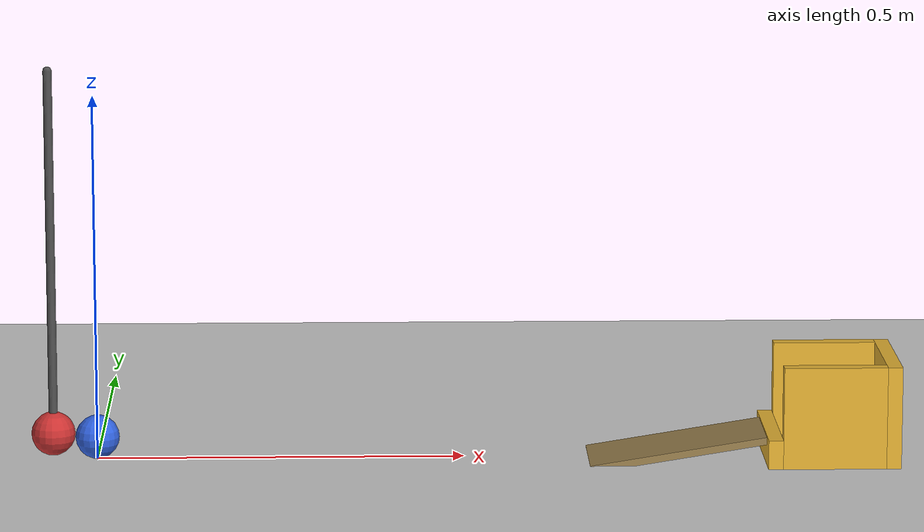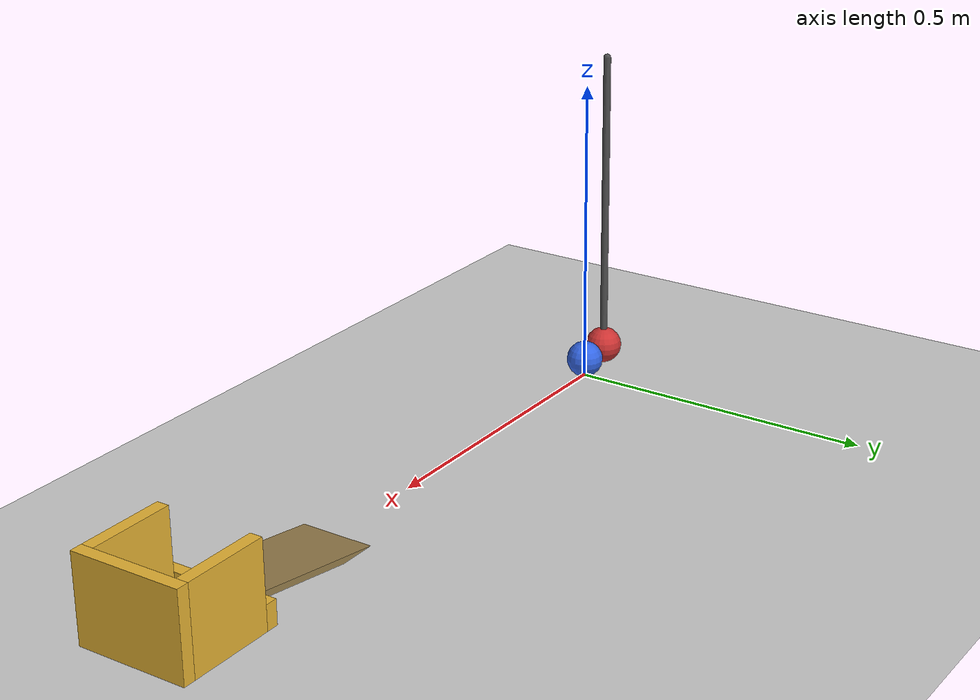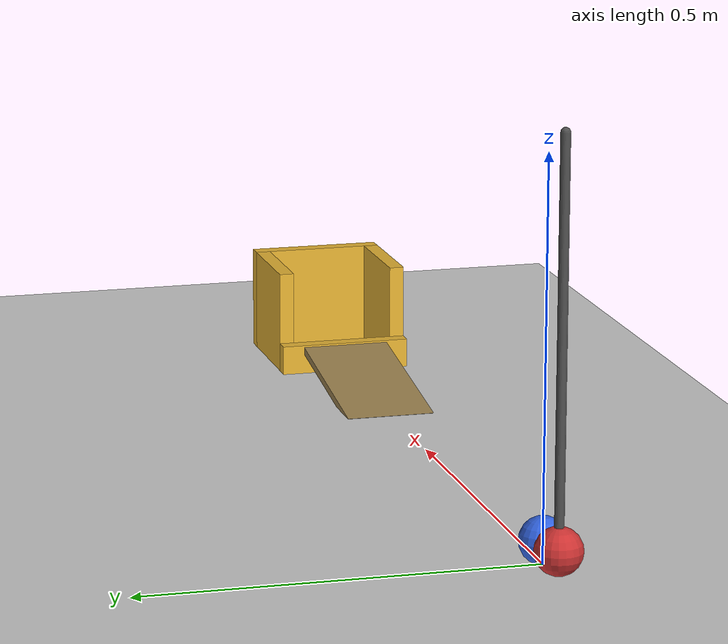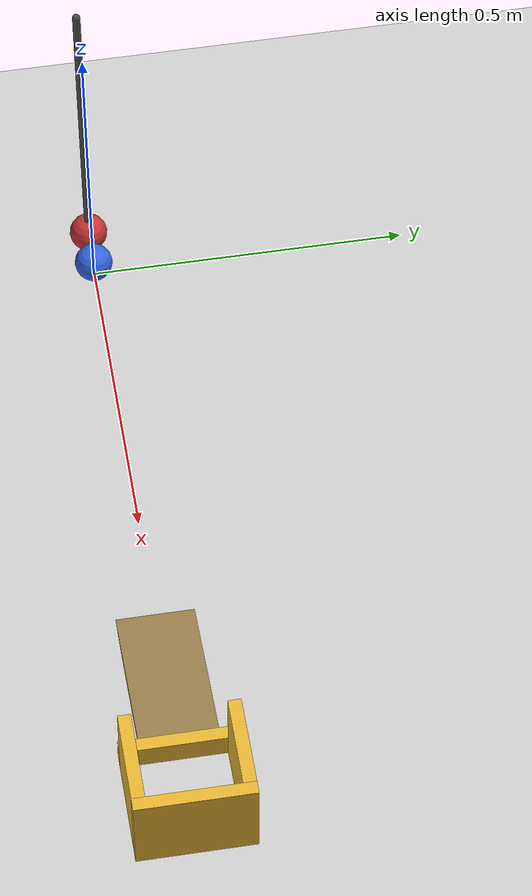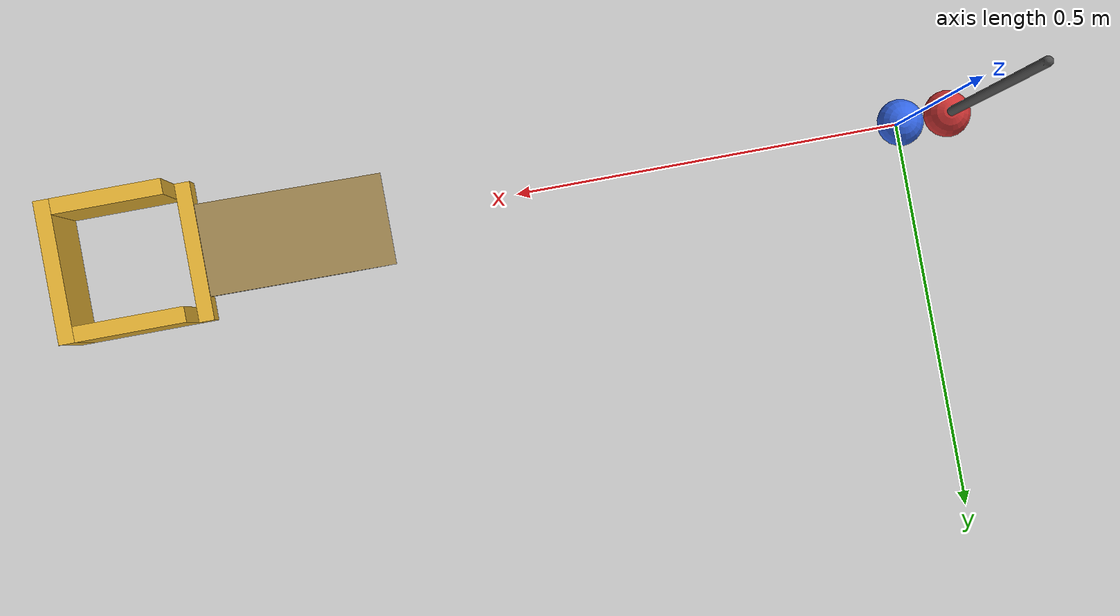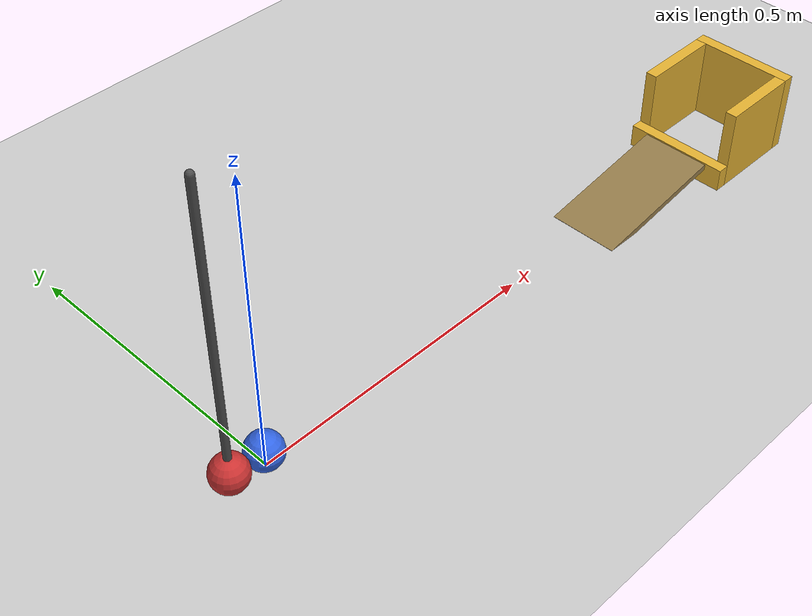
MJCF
<mujoco model="pendulum_ball_cup">
  <option timestep="0.002" gravity="0 0 -9.81"/>
  <worldbody>
    <light name="light" pos="0.5 0 2" dir="0 0 -1" diffuse="0.8 0.8 0.8"/>
    <geom name="floor" type="plane" size="3 3 0.1" rgba="0.8 0.8 0.8 1"/>
    <body name="pendulum" pos="-0.06 0 0.535">
      <joint name="pendulum_hinge" type="hinge" axis="0 1 0" pos="0 0 0"/>
      <geom name="pendulum_rod" type="capsule" fromto="0 0 0 0 0 -0.47" size="0.006" mass="0.02" rgba="0.3 0.3 0.3 1"/>
      <geom name="pendulum_bob" type="sphere" pos="0 0 -0.5" size="0.03" mass="0.5" rgba="0.8 0.2 0.2 1"/>
    </body>
    <body name="ball" pos="0 0 0.03">
      <freejoint name="ball_free"/>
      <geom name="ball" type="sphere" size="0.03" mass="0.05" rgba="0.2 0.4 0.9 1"/>
    </body>
    <body name="cup" pos="1 0 0">
      <geom name="cup_ramp" type="box" pos="-0.2042 0 0.0141" euler="0 -9.09 0" size="0.1266 0.06 0.005" rgba="0.6 0.5 0.3 1"/>
      <geom name="cup_front" type="box" pos="-0.08 0 0.02" size="0.01 0.09 0.02" rgba="0.9 0.7 0.2 1"/>
      <geom name="cup_back" type="box" pos="0.08 0 0.07" size="0.01 0.09 0.07" rgba="0.9 0.7 0.2 1"/>
      <geom name="cup_left" type="box" pos="0 0.08 0.07" size="0.07 0.01 0.07" rgba="0.9 0.7 0.2 1"/>
      <geom name="cup_right" type="box" pos="0 -0.08 0.07" size="0.07 0.01 0.07" rgba="0.9 0.7 0.2 1"/>
    </body>
  </worldbody>
  <keyframe>
    <key name="start" qpos="0.785 0 0 0.03 1 0 0 0" qvel="0 0 0 0 0 0 0"/>
  </keyframe>
</mujoco>
